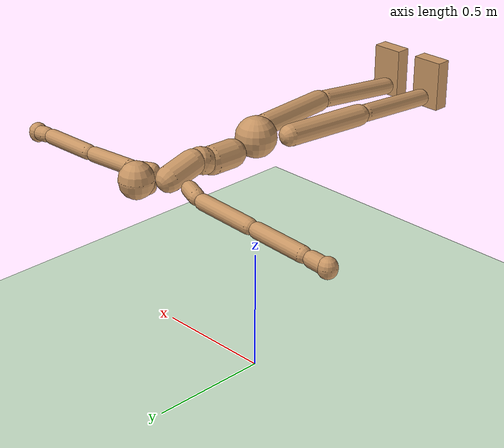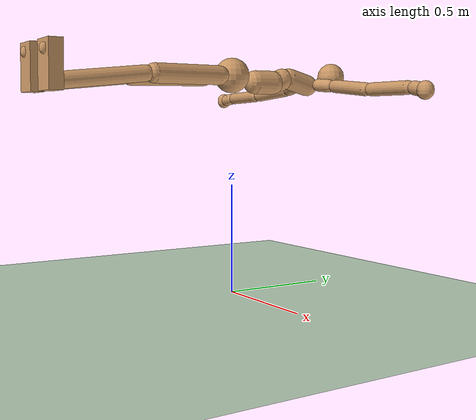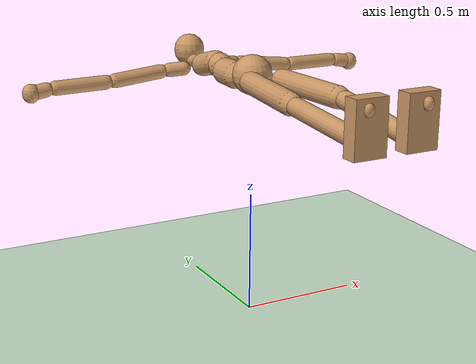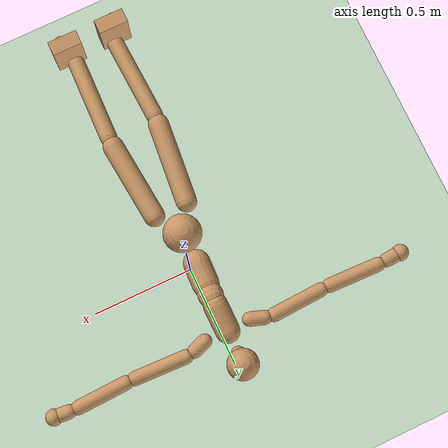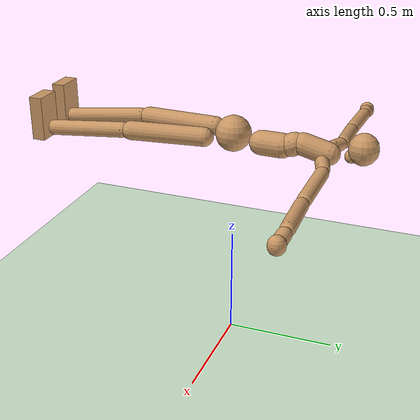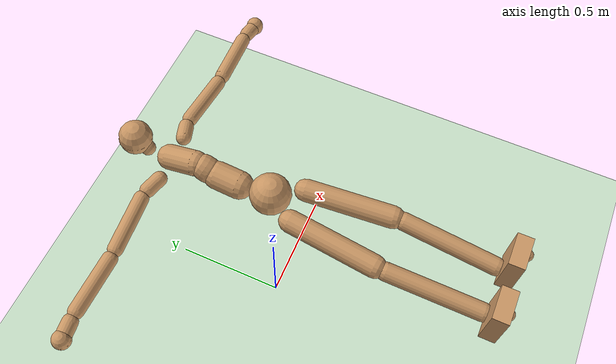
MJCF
<mujoco model="humanoid">
  <compiler angle="degree" inertiafromgeom="true" coordinate="global"/>
  <visual>
    <headlight ambient=".4 .4 .4" diffuse=".8 .8 .8" specular="0.1 0.1 0.1"/>
    <map znear=".01"/>
    <quality shadowsize="2048"/>
  </visual>
  <default>
    <joint damping="0.0" armature="0.01" stiffness="0.0" limited="true"/>
    <geom conaffinity="7" condim="1" contype="7" margin="0.001" rgba="0.8 0.6 .4 1"/>
  </default>
  <statistic extent="3" center="0 0 1"/>
  <option timestep="0.00222222222"/>
  <asset>
    <texture type="skybox" builtin="gradient" rgb1=".4 .5 .6" rgb2="0 0 0" width="100" height="100"/>
    <texture builtin="flat" height="1278" mark="cross" markrgb="1 1 1" name="texgeom" random="0.01" rgb1="0.8 0.6 0.4" rgb2="0.8 0.6 0.4" type="cube" width="127"/>
    <texture builtin="checker" height="100" name="texplane" rgb1="0 0 0" rgb2="0.8 0.8 0.8" type="2d" width="100"/>
    <material name="MatPlane" reflectance="0.5" shininess="1" specular="1" texrepeat="60 60" texture="texplane"/>
    <material name="geom" texture="texgeom" texuniform="true"/>
  </asset>
  <worldbody>
    <light cutoff="100" diffuse="1 1 1" dir="-0 0 -1.3" directional="true" exponent="1" pos="0 0 1.3" specular=".1 .1 .1"/>
    <geom conaffinity="1" condim="3" name="floor" pos="0 0 0" rgba="0.8 0.9 0.8 1" size="100 100 .2" type="plane" material="MatPlane"/>
    <body name="Pelvis" pos="0.0000 0.0000 1.0000" user="-0.0002 -0.0243 0.9874">
      <joint name="Pelvis" pos="0.0000 0.0000 1.0000" limited="false" type="free" armature="0" damping="0" stiffness="0"/>
      <geom type="sphere" contype="0" conaffinity="1" size="0.0800" pos="0.0000 0.0000 1.0000"/>
      <body name="L_Hip" pos="0.0695 -0.0914 0.9932" user="0.1038 -0.4666 0.9887">
        <joint name="L_Hip_z" type="hinge" pos="0.0695 -0.0914 0.9932" axis="0.0000 0.0000 1.0000" range="-180.0000 180.0000"/>
        <joint name="L_Hip_y" type="hinge" pos="0.0695 -0.0914 0.9932" axis="0.0000 1.0000 0.0000" range="-180.0000 180.0000"/>
        <joint name="L_Hip_x" type="hinge" pos="0.0695 -0.0914 0.9932" axis="1.0000 0.0000 0.0000" range="-180.0000 180.0000"/>
        <geom type="capsule" contype="0" conaffinity="1" fromto="0.0713 -0.1113 0.9929 0.1020 -0.4467 0.9889" size="0.0430"/>
        <body name="L_Knee" pos="0.1038 -0.4666 0.9887" user="0.0902 -0.8646 0.9450">
          <joint name="L_Knee_z" type="hinge" pos="0.1038 -0.4666 0.9887" axis="0.0000 0.0000 1.0000" range="-180.0000 180.0000"/>
          <joint name="L_Knee_y" type="hinge" pos="0.1038 -0.4666 0.9887" axis="0.0000 1.0000 0.0000" range="-180.0000 180.0000"/>
          <joint name="L_Knee_x" type="hinge" pos="0.1038 -0.4666 0.9887" axis="1.0000 0.0000 0.0000" range="-180.0000 180.0000"/>
          <geom type="capsule" contype="0" conaffinity="1" fromto="0.1031 -0.4865 0.9865 0.0909 -0.8447 0.9472" size="0.0350"/>
          <body name="L_Ankle" pos="0.0902 -0.8646 0.9450" user="0.1166 -0.9204 1.0643">
            <joint name="L_Ankle_z" type="hinge" pos="0.0902 -0.8646 0.9450" axis="0.0000 0.0000 1.0000" range="-180.0000 180.0000"/>
            <joint name="L_Ankle_y" type="hinge" pos="0.0902 -0.8646 0.9450" axis="0.0000 1.0000 0.0000" range="-180.0000 180.0000"/>
            <joint name="L_Ankle_x" type="hinge" pos="0.0902 -0.8646 0.9450" axis="1.0000 0.0000 0.0000" range="-180.0000 180.0000"/>
            <geom type="box" contype="0" conaffinity="1" pos="0.1034 -0.8925 1.0046" size="0.0619 0.0998 0.0299" quat="0.7071 -0.7071 -0.0000 -0.0000"/>
            <body name="L_Toe" pos="0.1166 -0.9204 1.0643" user="0.1166 -0.9204 1.0643">
              <joint name="L_Toe_z" type="hinge" pos="0.1166 -0.9204 1.0643" axis="0.0000 0.0000 1.0000" range="-180.0000 180.0000"/>
              <joint name="L_Toe_y" type="hinge" pos="0.1166 -0.9204 1.0643" axis="0.0000 1.0000 0.0000" range="-180.0000 180.0000"/>
              <joint name="L_Toe_x" type="hinge" pos="0.1166 -0.9204 1.0643" axis="1.0000 0.0000 0.0000" range="-180.0000 180.0000"/>
              <geom type="capsule" contype="0" conaffinity="1" fromto="0.1166 -0.9204 1.0683 0.1166 -0.9204 1.0603" size="0.0200"/>
            </body>
          </body>
        </body>
      </body>
      <body name="R_Hip" pos="-0.0677 -0.0905 0.9957" user="-0.1060 -0.4731 0.9868">
        <joint name="R_Hip_z" type="hinge" pos="-0.0677 -0.0905 0.9957" axis="0.0000 0.0000 1.0000" range="-180.0000 180.0000"/>
        <joint name="R_Hip_y" type="hinge" pos="-0.0677 -0.0905 0.9957" axis="0.0000 1.0000 0.0000" range="-180.0000 180.0000"/>
        <joint name="R_Hip_x" type="hinge" pos="-0.0677 -0.0905 0.9957" axis="1.0000 0.0000 0.0000" range="-180.0000 180.0000"/>
        <geom type="capsule" contype="0" conaffinity="1" fromto="-0.0697 -0.1104 0.9952 -0.1040 -0.4532 0.9873" size="0.0430"/>
        <body name="R_Knee" pos="-0.1060 -0.4731 0.9868" user="-0.0902 -0.8715 0.9445">
          <joint name="R_Knee_z" type="hinge" pos="-0.1060 -0.4731 0.9868" axis="0.0000 0.0000 1.0000" range="-180.0000 180.0000"/>
          <joint name="R_Knee_y" type="hinge" pos="-0.1060 -0.4731 0.9868" axis="0.0000 1.0000 0.0000" range="-180.0000 180.0000"/>
          <joint name="R_Knee_x" type="hinge" pos="-0.1060 -0.4731 0.9868" axis="1.0000 0.0000 0.0000" range="-180.0000 180.0000"/>
          <geom type="capsule" contype="0" conaffinity="1" fromto="-0.1052 -0.4930 0.9847 -0.0910 -0.8516 0.9466" size="0.0350"/>
          <body name="R_Ankle" pos="-0.0902 -0.8715 0.9445" user="-0.1156 -0.9196 1.0679">
            <joint name="R_Ankle_z" type="hinge" pos="-0.0902 -0.8715 0.9445" axis="0.0000 0.0000 1.0000" range="-180.0000 180.0000"/>
            <joint name="R_Ankle_y" type="hinge" pos="-0.0902 -0.8715 0.9445" axis="0.0000 1.0000 0.0000" range="-180.0000 180.0000"/>
            <joint name="R_Ankle_x" type="hinge" pos="-0.0902 -0.8715 0.9445" axis="1.0000 0.0000 0.0000" range="-180.0000 180.0000"/>
            <geom type="box" contype="0" conaffinity="1" pos="-0.1029 -0.8956 1.0062" size="0.0622 0.1003 0.0301" quat="0.7071 -0.7071 0.0000 0.0000"/>
            <body name="R_Toe" pos="-0.1156 -0.9196 1.0679" user="-0.1156 -0.9196 1.0679">
              <joint name="R_Toe_z" type="hinge" pos="-0.1156 -0.9196 1.0679" axis="0.0000 0.0000 1.0000" range="-180.0000 180.0000"/>
              <joint name="R_Toe_y" type="hinge" pos="-0.1156 -0.9196 1.0679" axis="0.0000 1.0000 0.0000" range="-180.0000 180.0000"/>
              <joint name="R_Toe_x" type="hinge" pos="-0.1156 -0.9196 1.0679" axis="1.0000 0.0000 0.0000" range="-180.0000 180.0000"/>
              <geom type="capsule" contype="0" conaffinity="1" fromto="-0.1156 -0.9196 1.0719 -0.1156 -0.9196 1.0639" size="0.0200"/>
            </body>
          </body>
        </body>
      </body>
      <body name="Torso" pos="-0.0025 0.1090 0.9733" user="0.0030 0.2441 0.9744">
        <joint name="Torso_z" type="hinge" pos="-0.0025 0.1090 0.9733" axis="0.0000 0.0000 1.0000" range="-180.0000 180.0000"/>
        <joint name="Torso_y" type="hinge" pos="-0.0025 0.1090 0.9733" axis="0.0000 1.0000 0.0000" range="-180.0000 180.0000"/>
        <joint name="Torso_x" type="hinge" pos="-0.0025 0.1090 0.9733" axis="1.0000 0.0000 0.0000" range="-180.0000 180.0000"/>
        <geom type="capsule" contype="0" conaffinity="1" fromto="-0.0017 0.1289 0.9735 0.0021 0.2242 0.9742" size="0.0550"/>
        <body name="Spine" pos="0.0030 0.2441 0.9744" user="0.0044 0.2971 0.9998">
          <joint name="Spine_z" type="hinge" pos="0.0030 0.2441 0.9744" axis="0.0000 0.0000 1.0000" range="-180.0000 180.0000"/>
          <joint name="Spine_y" type="hinge" pos="0.0030 0.2441 0.9744" axis="0.0000 1.0000 0.0000" range="-180.0000 180.0000"/>
          <joint name="Spine_x" type="hinge" pos="0.0030 0.2441 0.9744" axis="1.0000 0.0000 0.0000" range="-180.0000 180.0000"/>
          <geom type="capsule" contype="0" conaffinity="1" fromto="0.0035 0.2622 0.9831 0.0039 0.2790 0.9912" size="0.0510"/>
          <body name="Chest" pos="0.0044 0.2971 0.9998" user="0.0025 0.4486 0.9613">
            <joint name="Chest_z" type="hinge" pos="0.0044 0.2971 0.9998" axis="0.0000 0.0000 1.0000" range="-180.0000 180.0000"/>
            <joint name="Chest_y" type="hinge" pos="0.0044 0.2971 0.9998" axis="0.0000 1.0000 0.0000" range="-180.0000 180.0000"/>
            <joint name="Chest_x" type="hinge" pos="0.0044 0.2971 0.9998" axis="1.0000 0.0000 0.0000" range="-180.0000 180.0000"/>
            <geom type="capsule" contype="0" conaffinity="1" fromto="0.0042 0.3164 0.9949 0.0028 0.4292 0.9662" size="0.0500"/>
            <body name="Neck" pos="0.0016 0.5109 0.9570" user="0.0068 0.5759 1.0083">
              <joint name="Neck_z" type="hinge" pos="0.0016 0.5109 0.9570" axis="0.0000 0.0000 1.0000" range="-180.0000 180.0000"/>
              <joint name="Neck_y" type="hinge" pos="0.0016 0.5109 0.9570" axis="0.0000 1.0000 0.0000" range="-180.0000 180.0000"/>
              <joint name="Neck_x" type="hinge" pos="0.0016 0.5109 0.9570" axis="1.0000 0.0000 0.0000" range="-180.0000 180.0000"/>
              <geom type="capsule" contype="0" conaffinity="1" fromto="0.0029 0.5266 0.9693 0.0055 0.5602 0.9959" size="0.0300"/>
              <body name="Head" pos="0.0068 0.5759 1.0083" user="0.0068 0.5759 1.0083">
                <joint name="Head_z" type="hinge" pos="0.0068 0.5759 1.0083" axis="0.0000 0.0000 1.0000" range="-180.0000 180.0000"/>
                <joint name="Head_y" type="hinge" pos="0.0068 0.5759 1.0083" axis="0.0000 1.0000 0.0000" range="-180.0000 180.0000"/>
                <joint name="Head_x" type="hinge" pos="0.0068 0.5759 1.0083" axis="1.0000 0.0000 0.0000" range="-180.0000 180.0000"/>
                <geom type="capsule" contype="0" conaffinity="1" fromto="0.0068 0.5759 1.0123 0.0068 0.5759 1.0043" size="0.0650"/>
              </body>
            </body>
            <body name="L_Thorax" pos="0.0833 0.4188 0.9657" user="0.1742 0.4493 0.9569">
              <joint name="L_Thorax_z" type="hinge" pos="0.0833 0.4188 0.9657" axis="0.0000 0.0000 1.0000" range="-180.0000 180.0000"/>
              <joint name="L_Thorax_y" type="hinge" pos="0.0833 0.4188 0.9657" axis="0.0000 1.0000 0.0000" range="-180.0000 180.0000"/>
              <joint name="L_Thorax_x" type="hinge" pos="0.0833 0.4188 0.9657" axis="1.0000 0.0000 0.0000" range="-180.0000 180.0000"/>
              <geom type="capsule" contype="0" conaffinity="1" fromto="0.1021 0.4251 0.9639 0.1553 0.4430 0.9587" size="0.0300"/>
              <body name="L_Shoulder" pos="0.1742 0.4493 0.9569" user="0.4338 0.4365 0.9294">
                <joint name="L_Shoulder_z" type="hinge" pos="0.1742 0.4493 0.9569" axis="0.0000 0.0000 1.0000" range="-180.0000 180.0000"/>
                <joint name="L_Shoulder_y" type="hinge" pos="0.1742 0.4493 0.9569" axis="0.0000 1.0000 0.0000" range="-180.0000 180.0000"/>
                <joint name="L_Shoulder_x" type="hinge" pos="0.1742 0.4493 0.9569" axis="1.0000 0.0000 0.0000" range="-180.0000 180.0000"/>
                <geom type="capsule" contype="0" conaffinity="1" fromto="0.1941 0.4483 0.9548 0.4140 0.4375 0.9315" size="0.0300"/>
                <body name="L_Elbow" pos="0.4338 0.4365 0.9294" user="0.6831 0.4455 0.9282">
                  <joint name="L_Elbow_z" type="hinge" pos="0.4338 0.4365 0.9294" axis="0.0000 0.0000 1.0000" range="-720.0000 720.0000"/>
                  <joint name="L_Elbow_y" type="hinge" pos="0.4338 0.4365 0.9294" axis="0.0000 1.0000 0.0000" range="-720.0000 720.0000"/>
                  <joint name="L_Elbow_x" type="hinge" pos="0.4338 0.4365 0.9294" axis="1.0000 0.0000 0.0000" range="-720.0000 720.0000"/>
                  <geom type="capsule" contype="0" conaffinity="1" fromto="0.4538 0.4372 0.9293 0.6631 0.4448 0.9283" size="0.0300"/>
                  <body name="L_Wrist" pos="0.6831 0.4455 0.9282" user="0.7671 0.4373 0.9133">
                    <joint name="L_Wrist_z" type="hinge" pos="0.6831 0.4455 0.9282" axis="0.0000 0.0000 1.0000" range="-180.0000 180.0000"/>
                    <joint name="L_Wrist_y" type="hinge" pos="0.6831 0.4455 0.9282" axis="0.0000 1.0000 0.0000" range="-180.0000 180.0000"/>
                    <joint name="L_Wrist_x" type="hinge" pos="0.6831 0.4455 0.9282" axis="1.0000 0.0000 0.0000" range="-180.0000 180.0000"/>
                    <geom type="capsule" contype="0" conaffinity="1" fromto="0.7027 0.4436 0.9247 0.7475 0.4392 0.9168" size="0.0300"/>
                    <body name="L_Hand" pos="0.7671 0.4373 0.9133" user="0.7671 0.4373 0.9133">
                      <joint name="L_Hand_z" type="hinge" pos="0.7671 0.4373 0.9133" axis="0.0000 0.0000 1.0000" range="-180.0000 180.0000"/>
                      <joint name="L_Hand_y" type="hinge" pos="0.7671 0.4373 0.9133" axis="0.0000 1.0000 0.0000" range="-180.0000 180.0000"/>
                      <joint name="L_Hand_x" type="hinge" pos="0.7671 0.4373 0.9133" axis="1.0000 0.0000 0.0000" range="-180.0000 180.0000"/>
                      <geom type="capsule" contype="0" conaffinity="1" fromto="0.7671 0.4373 0.9173 0.7671 0.4373 0.9093" size="0.0350"/>
                    </body>
                  </body>
                </body>
              </body>
            </body>
            <body name="R_Thorax" pos="-0.0773 0.4159 0.9612" user="-0.1734 0.4484 0.9521">
              <joint name="R_Thorax_z" type="hinge" pos="-0.0773 0.4159 0.9612" axis="0.0000 0.0000 1.0000" range="-180.0000 180.0000"/>
              <joint name="R_Thorax_y" type="hinge" pos="-0.0773 0.4159 0.9612" axis="0.0000 1.0000 0.0000" range="-180.0000 180.0000"/>
              <joint name="R_Thorax_x" type="hinge" pos="-0.0773 0.4159 0.9612" axis="1.0000 0.0000 0.0000" range="-180.0000 180.0000"/>
              <geom type="capsule" contype="0" conaffinity="1" fromto="-0.0962 0.4223 0.9594 -0.1545 0.4421 0.9539" size="0.0300"/>
              <body name="R_Shoulder" pos="-0.1734 0.4484 0.9521" user="-0.4271 0.4351 0.9307">
                <joint name="R_Shoulder_z" type="hinge" pos="-0.1734 0.4484 0.9521" axis="0.0000 0.0000 1.0000" range="-180.0000 180.0000"/>
                <joint name="R_Shoulder_y" type="hinge" pos="-0.1734 0.4484 0.9521" axis="0.0000 1.0000 0.0000" range="-180.0000 180.0000"/>
                <joint name="R_Shoulder_x" type="hinge" pos="-0.1734 0.4484 0.9521" axis="1.0000 0.0000 0.0000" range="-180.0000 180.0000"/>
                <geom type="capsule" contype="0" conaffinity="1" fromto="-0.1933 0.4474 0.9504 -0.4072 0.4362 0.9323" size="0.0300"/>
                <body name="R_Elbow" pos="-0.4271 0.4351 0.9307" user="-0.6824 0.4429 0.9251">
                  <joint name="R_Elbow_z" type="hinge" pos="-0.4271 0.4351 0.9307" axis="0.0000 0.0000 1.0000" range="-720.0000 720.0000"/>
                  <joint name="R_Elbow_y" type="hinge" pos="-0.4271 0.4351 0.9307" axis="0.0000 1.0000 0.0000" range="-720.0000 720.0000"/>
                  <joint name="R_Elbow_x" type="hinge" pos="-0.4271 0.4351 0.9307" axis="1.0000 0.0000 0.0000" range="-720.0000 720.0000"/>
                  <geom type="capsule" contype="0" conaffinity="1" fromto="-0.4471 0.4357 0.9302 -0.6624 0.4423 0.9255" size="0.0300"/>
                  <body name="R_Wrist" pos="-0.6824 0.4429 0.9251" user="-0.7670 0.4368 0.9148">
                    <joint name="R_Wrist_z" type="hinge" pos="-0.6824 0.4429 0.9251" axis="0.0000 0.0000 1.0000" range="-180.0000 180.0000"/>
                    <joint name="R_Wrist_y" type="hinge" pos="-0.6824 0.4429 0.9251" axis="0.0000 1.0000 0.0000" range="-180.0000 180.0000"/>
                    <joint name="R_Wrist_x" type="hinge" pos="-0.6824 0.4429 0.9251" axis="1.0000 0.0000 0.0000" range="-180.0000 180.0000"/>
                    <geom type="capsule" contype="0" conaffinity="1" fromto="-0.7022 0.4415 0.9227 -0.7472 0.4382 0.9172" size="0.0300"/>
                    <body name="R_Hand" pos="-0.7670 0.4368 0.9148" user="-0.7670 0.4368 0.9148">
                      <joint name="R_Hand_z" type="hinge" pos="-0.7670 0.4368 0.9148" axis="0.0000 0.0000 1.0000" range="-180.0000 180.0000"/>
                      <joint name="R_Hand_y" type="hinge" pos="-0.7670 0.4368 0.9148" axis="0.0000 1.0000 0.0000" range="-180.0000 180.0000"/>
                      <joint name="R_Hand_x" type="hinge" pos="-0.7670 0.4368 0.9148" axis="1.0000 0.0000 0.0000" range="-180.0000 180.0000"/>
                      <geom type="capsule" contype="0" conaffinity="1" fromto="-0.7670 0.4368 0.9188 -0.7670 0.4368 0.9108" size="0.0350"/>
                    </body>
                  </body>
                </body>
              </body>
            </body>
          </body>
        </body>
      </body>
    </body>
  </worldbody>
  <actuator>
    <motor name="L_Hip_z" joint="L_Hip_z" gear="1"/>
    <motor name="L_Hip_y" joint="L_Hip_y" gear="1"/>
    <motor name="L_Hip_x" joint="L_Hip_x" gear="1"/>
    <motor name="L_Knee_z" joint="L_Knee_z" gear="1"/>
    <motor name="L_Knee_y" joint="L_Knee_y" gear="1"/>
    <motor name="L_Knee_x" joint="L_Knee_x" gear="1"/>
    <motor name="L_Ankle_z" joint="L_Ankle_z" gear="1"/>
    <motor name="L_Ankle_y" joint="L_Ankle_y" gear="1"/>
    <motor name="L_Ankle_x" joint="L_Ankle_x" gear="1"/>
    <motor name="L_Toe_z" joint="L_Toe_z" gear="1"/>
    <motor name="L_Toe_y" joint="L_Toe_y" gear="1"/>
    <motor name="L_Toe_x" joint="L_Toe_x" gear="1"/>
    <motor name="R_Hip_z" joint="R_Hip_z" gear="1"/>
    <motor name="R_Hip_y" joint="R_Hip_y" gear="1"/>
    <motor name="R_Hip_x" joint="R_Hip_x" gear="1"/>
    <motor name="R_Knee_z" joint="R_Knee_z" gear="1"/>
    <motor name="R_Knee_y" joint="R_Knee_y" gear="1"/>
    <motor name="R_Knee_x" joint="R_Knee_x" gear="1"/>
    <motor name="R_Ankle_z" joint="R_Ankle_z" gear="1"/>
    <motor name="R_Ankle_y" joint="R_Ankle_y" gear="1"/>
    <motor name="R_Ankle_x" joint="R_Ankle_x" gear="1"/>
    <motor name="R_Toe_z" joint="R_Toe_z" gear="1"/>
    <motor name="R_Toe_y" joint="R_Toe_y" gear="1"/>
    <motor name="R_Toe_x" joint="R_Toe_x" gear="1"/>
    <motor name="Torso_z" joint="Torso_z" gear="1"/>
    <motor name="Torso_y" joint="Torso_y" gear="1"/>
    <motor name="Torso_x" joint="Torso_x" gear="1"/>
    <motor name="Spine_z" joint="Spine_z" gear="1"/>
    <motor name="Spine_y" joint="Spine_y" gear="1"/>
    <motor name="Spine_x" joint="Spine_x" gear="1"/>
    <motor name="Chest_z" joint="Chest_z" gear="1"/>
    <motor name="Chest_y" joint="Chest_y" gear="1"/>
    <motor name="Chest_x" joint="Chest_x" gear="1"/>
    <motor name="Neck_z" joint="Neck_z" gear="1"/>
    <motor name="Neck_y" joint="Neck_y" gear="1"/>
    <motor name="Neck_x" joint="Neck_x" gear="1"/>
    <motor name="Head_z" joint="Head_z" gear="1"/>
    <motor name="Head_y" joint="Head_y" gear="1"/>
    <motor name="Head_x" joint="Head_x" gear="1"/>
    <motor name="L_Thorax_z" joint="L_Thorax_z" gear="1"/>
    <motor name="L_Thorax_y" joint="L_Thorax_y" gear="1"/>
    <motor name="L_Thorax_x" joint="L_Thorax_x" gear="1"/>
    <motor name="L_Shoulder_z" joint="L_Shoulder_z" gear="1"/>
    <motor name="L_Shoulder_y" joint="L_Shoulder_y" gear="1"/>
    <motor name="L_Shoulder_x" joint="L_Shoulder_x" gear="1"/>
    <motor name="L_Elbow_z" joint="L_Elbow_z" gear="1"/>
    <motor name="L_Elbow_y" joint="L_Elbow_y" gear="1"/>
    <motor name="L_Elbow_x" joint="L_Elbow_x" gear="1"/>
    <motor name="L_Wrist_z" joint="L_Wrist_z" gear="1"/>
    <motor name="L_Wrist_y" joint="L_Wrist_y" gear="1"/>
    <motor name="L_Wrist_x" joint="L_Wrist_x" gear="1"/>
    <motor name="L_Hand_z" joint="L_Hand_z" gear="1"/>
    <motor name="L_Hand_y" joint="L_Hand_y" gear="1"/>
    <motor name="L_Hand_x" joint="L_Hand_x" gear="1"/>
    <motor name="R_Thorax_z" joint="R_Thorax_z" gear="1"/>
    <motor name="R_Thorax_y" joint="R_Thorax_y" gear="1"/>
    <motor name="R_Thorax_x" joint="R_Thorax_x" gear="1"/>
    <motor name="R_Shoulder_z" joint="R_Shoulder_z" gear="1"/>
    <motor name="R_Shoulder_y" joint="R_Shoulder_y" gear="1"/>
    <motor name="R_Shoulder_x" joint="R_Shoulder_x" gear="1"/>
    <motor name="R_Elbow_z" joint="R_Elbow_z" gear="1"/>
    <motor name="R_Elbow_y" joint="R_Elbow_y" gear="1"/>
    <motor name="R_Elbow_x" joint="R_Elbow_x" gear="1"/>
    <motor name="R_Wrist_z" joint="R_Wrist_z" gear="1"/>
    <motor name="R_Wrist_y" joint="R_Wrist_y" gear="1"/>
    <motor name="R_Wrist_x" joint="R_Wrist_x" gear="1"/>
    <motor name="R_Hand_z" joint="R_Hand_z" gear="1"/>
    <motor name="R_Hand_y" joint="R_Hand_y" gear="1"/>
    <motor name="R_Hand_x" joint="R_Hand_x" gear="1"/>
  </actuator>
</mujoco>
